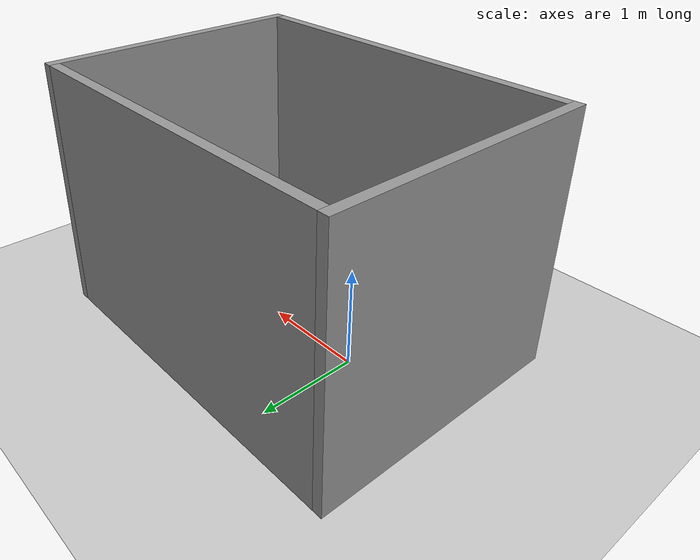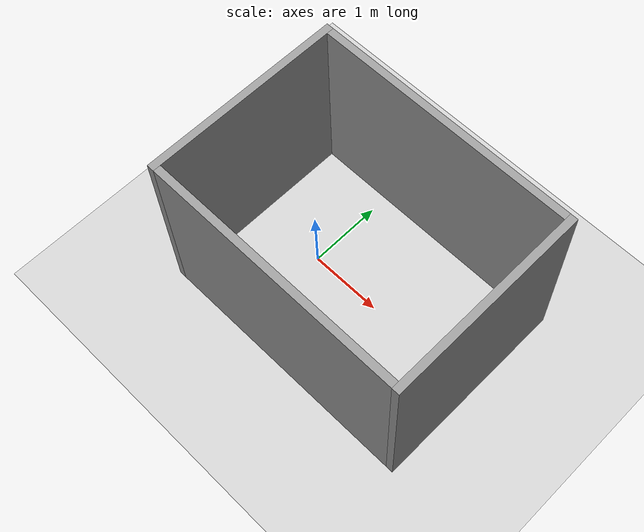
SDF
<?xml version="1.0"?>
<!-- generated by sim/worlds/make_worlds.py; edit its flags, not this file -->
<sdf version="1.6">
  <!-- small_room. The world must be called "default": the Velodyne plugin
       listens for scans under /gazebo/default/... whatever the world's name. -->
  <world name="default">
    <include><uri>model://sun</uri></include>
    <include><uri>model://ground_plane</uri></include>
    <physics type="ode"><real_time_update_rate>1000</real_time_update_rate>
      <max_step_size>0.001</max_step_size></physics>
    <model name="wall_far"><static>true</static>
      <pose>2.550 0.000 1.250 0 0 0</pose>
      <link name="link">
        <collision name="c"><geometry><box><size>0.100 2.700 2.500</size></box></geometry></collision>
        <visual name="v"><geometry><box><size>0.100 2.700 2.500</size></box></geometry>
          <material><ambient>0.6 0.6 0.6 1</ambient><diffuse>0.6 0.6 0.6 1</diffuse></material></visual>
      </link></model>
    <model name="wall_left"><static>true</static>
      <pose>0.750 1.300 1.250 0 0 0</pose>
      <link name="link">
        <collision name="c"><geometry><box><size>3.500 0.100 2.500</size></box></geometry></collision>
        <visual name="v"><geometry><box><size>3.500 0.100 2.500</size></box></geometry>
          <material><ambient>0.6 0.6 0.6 1</ambient><diffuse>0.6 0.6 0.6 1</diffuse></material></visual>
      </link></model>
    <model name="wall_right"><static>true</static>
      <pose>0.750 -1.300 1.250 0 0 0</pose>
      <link name="link">
        <collision name="c"><geometry><box><size>3.500 0.100 2.500</size></box></geometry></collision>
        <visual name="v"><geometry><box><size>3.500 0.100 2.500</size></box></geometry>
          <material><ambient>0.6 0.6 0.6 1</ambient><diffuse>0.6 0.6 0.6 1</diffuse></material></visual>
      </link></model>
    <model name="wall_near"><static>true</static>
      <pose>-1.050 0.000 1.250 0 0 0</pose>
      <link name="link">
        <collision name="c"><geometry><box><size>0.100 2.700 2.500</size></box></geometry></collision>
        <visual name="v"><geometry><box><size>0.100 2.700 2.500</size></box></geometry>
          <material><ambient>0.6 0.6 0.6 1</ambient><diffuse>0.6 0.6 0.6 1</diffuse></material></visual>
      </link></model>
  </world>
</sdf>
